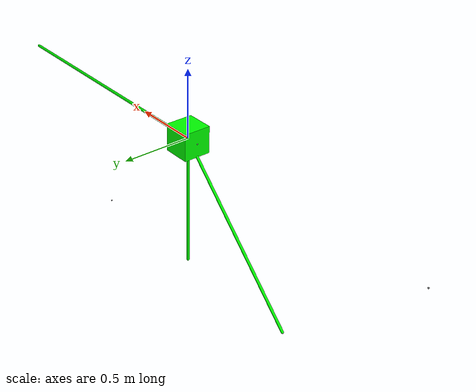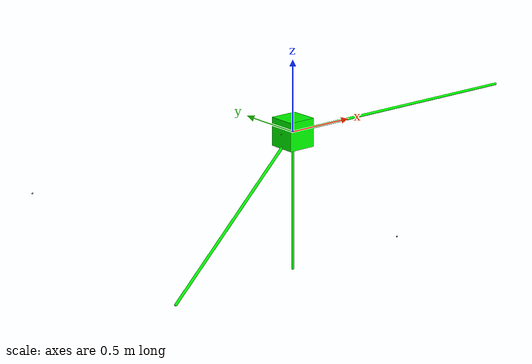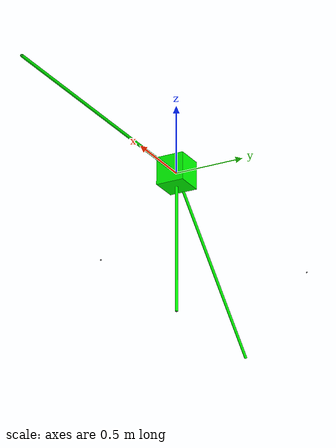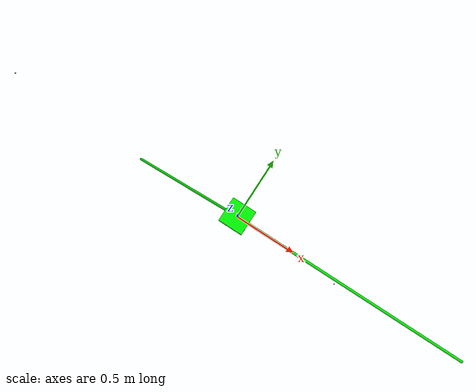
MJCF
<mujoco>
            <compiler angle="radian" autolimits="true" />
            <compiler meshdir="asset" texturedir="asset" assetdir="asset" />
            <option gravity="0 0 -9.81" />
            <default class="main">
            <geom friction="0 0 0" solimp="0.9 1 0.001 0.01 20" solref="0.02 1" condim="1" />
        </default>

        <visual>
            <headlight diffuse="0.7 0.7 0.7" ambient="0.5 0.5 0.5" />
            <global offwidth="1920" offheight="1080" />
        </visual>

        <asset>
            <texture type="skybox" builtin="gradient" rgb1="0 0.5 0.7" rgb2="0 0 0" width="512" height="512" />
            <texture type="2d" name="checks1" builtin="checker" rgb1="1 1 1" rgb2="0 0 0" width="256" height="256" />
            <material name="test_color" texture="checks1" texuniform="true" texrepeat="2 2" />
            <material name="reflectance" reflectance=".4" />
            <texture name="grid" type="2d" builtin="checker" width="512" height="512" rgb1="1.0 0.6235 0.1098" rgb2="1.0 0.749 0.4118" />
            <texture name="white-texture-background" type="2d" file="/home/aryansatpathy/DevStuff/cmu/PHO/sim/geom_sources/fixed_sources/rocket/rocket.white-texture-background.png" content_type="image/png" />
            <material name="pulley" texture="grid" texrepeat="2 2" texuniform="true" />

        </asset>
        <worldbody><body name="springblockentity_0.tray_mass" pos="0.0 0.0 0.0" quat="1.0 0.0 0.0 0.0">
<geom name="springblockentity_0.tray_mass.geom" type="box" pos="0 0 0" size="0.1 0.1 0.1" rgba="0 1 0 1" mass="0.1" quat="0 0 0 1" condim="1" contype="1" conaffinity="1" />
<site name="springblockentity_0.tray_mass.top-1" pos="0.0 0 0.1" quat="1.0 -0.0 -0.0 -0.0" />
<site name="springblockentity_0.tray_mass.sensor" pos="0 0 0" quat="1.0 -0.0 -0.0 -0.0" />
<site name="springblockentity_0.tray_mass.center" pos="0 0 0" quat="1.0 -0.0 -0.0 -0.0" />
<site name="springblockentity_0.tray_mass.left" pos="-0.1 0 0" quat="1.0 -0.0 -0.0 -0.0" />
<site name="springblockentity_0.tray_mass.right" pos="0.1 0 0" quat="1.0 -0.0 -0.0 -0.0" />
<site name="springblockentity_0.tray_mass.bottom" pos="0 0 -0.1" quat="1.0 -0.0 -0.0 -0.0" />
<joint name="springblockentity_0.tray_mass.joint" type="free" axis="1 1 1" pos="0 0 0" />
</body>
<body name="springblockentity_0" pos="0.0 0.0 0.0" quat="1.0 0.0 0.0 0.0"><site name="springblockentity_0.spring-0.fixed_site" pos="-0.9998489885977782 0.0 -0.9998489885977782" quat="1.0 -0.0 -0.0 -0.0" />
<site name="springblockentity_0.spring-1.fixed_site" pos="-2.220446049250313e-16 0.0 -1.0" quat="1.0 -0.0 -0.0 -0.0" />
<site name="springblockentity_0.spring-2.fixed_site" pos="2.0 0.0 -2.4492935982947064e-16" quat="1.0 -0.0 -0.0 -0.0" />
<site name="springblockentity_0.connecting_site-0" pos="0.9998489885977782 0.0 -0.9998489885977782" quat="1.0 -0.0 -0.0 -0.0" />
<site name="springblockentity_0.connecting_site-1" pos="2.220446049250313e-16 0.0 -1.0" quat="1.0 -0.0 -0.0 -0.0" />
<site name="springblockentity_0.connecting_site-2" pos="-2.0 0.0 -2.4492935982947064e-16" quat="1.0 -0.0 -0.0 -0.0" />
</body>

        </worldbody><tendon>
<spatial name="springblockentity_0.spring-0.spring" width="0.01" rgba="0 1 0 1" stiffness="50" springlength="1" damping="0.0" limited="false" solimplimit="0.99 1 0.001 0.01 20" solreflimit="0.02 1">
<site site="springblockentity_0.spring-0.fixed_site" />
<site site="springblockentity_0.tray_mass.center" />
</spatial>
</tendon>
<tendon>
<spatial name="springblockentity_0.spring-1.spring" width="0.01" rgba="0 1 0 1" stiffness="50" springlength="1" damping="0.0" limited="false" solimplimit="0.99 1 0.001 0.01 20" solreflimit="0.02 1">
<site site="springblockentity_0.spring-1.fixed_site" />
<site site="springblockentity_0.tray_mass.center" />
</spatial>
</tendon>
<tendon>
<spatial name="springblockentity_0.spring-2.spring" width="0.01" rgba="0 1 0 1" stiffness="100" springlength="1" damping="0.0" limited="false" solimplimit="0.99 1 0.001 0.01 20" solreflimit="0.02 1">
<site site="springblockentity_0.spring-2.fixed_site" />
<site site="springblockentity_0.tray_mass.center" />
</spatial>
</tendon>

        <sensor>

        </sensor>
        <custom>

        </custom>
        <contact>

        </contact>
        <actuator>

        </actuator>
    </mujoco>
